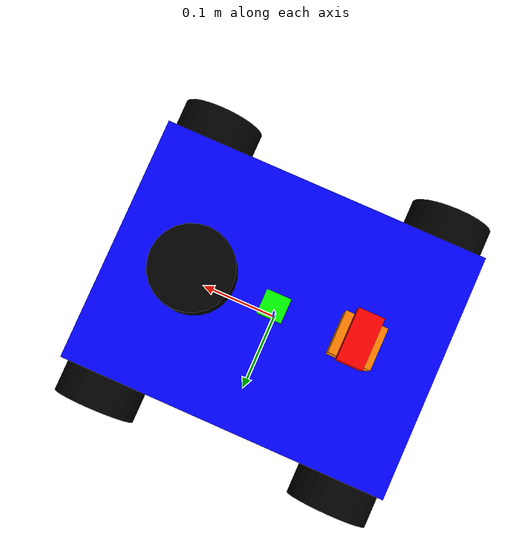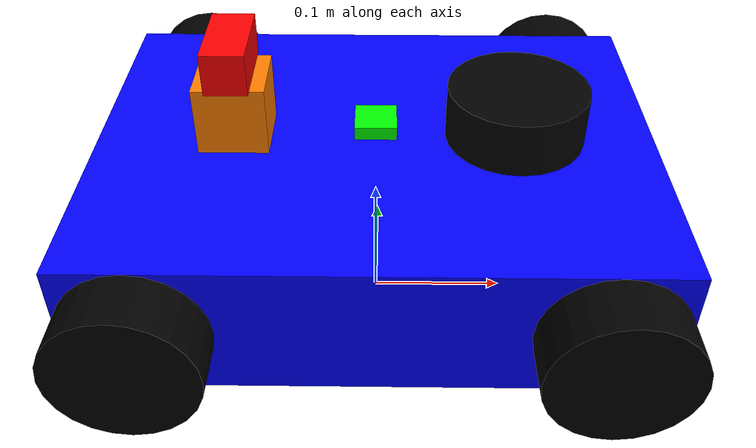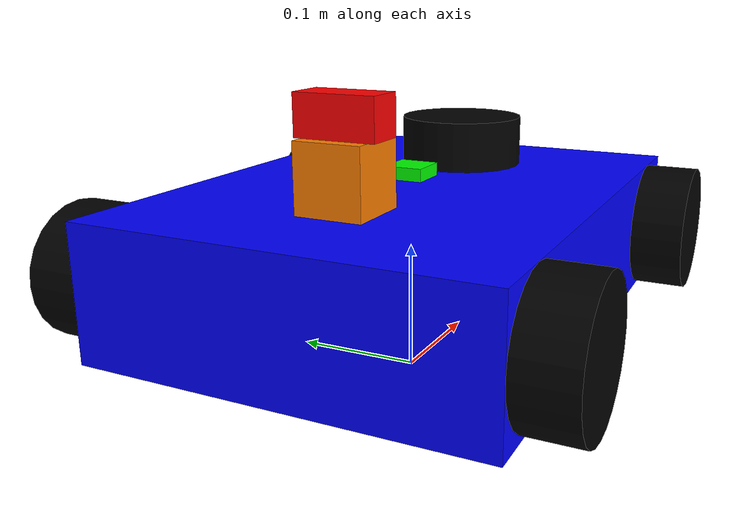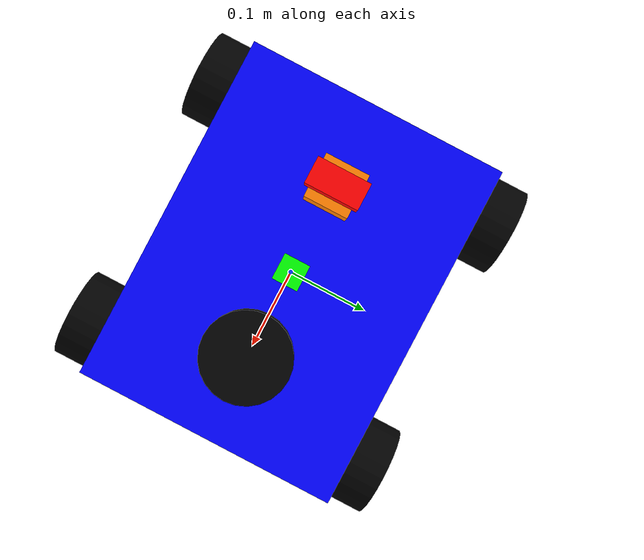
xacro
<?xml version="1.0"?>
<robot name="my_robot" xmlns:xacro="http://www.ros.org/wiki/xacro">

  <!-- PROPERTIES -->
  <xacro:property name="chassis_length" value="0.4"/>
  <xacro:property name="chassis_width"  value="0.3"/>
  <xacro:property name="chassis_height" value="0.1"/>
  <xacro:property name="wheel_radius"   value="0.05"/>
  <xacro:property name="wheel_width"    value="0.04"/>

  <!-- WHEEL MACRO -->
  <xacro:macro name="wheel" params="name x y">
    <link name="${name}">
      <visual>
        <geometry>
          <cylinder radius="${wheel_radius}" length="${wheel_width}"/>
        </geometry>
        <material name="black">
          <color rgba="0 0 0 1"/>
        </material>
      </visual>
      <collision>
        <geometry>
          <cylinder radius="${wheel_radius}" length="${wheel_width}"/>
        </geometry>
      </collision>
      <inertial>
        <mass value="0.5"/>
        <inertia ixx="0.001" ixy="0" ixz="0"
                 iyy="0.001" iyz="0" izz="0.001"/>
      </inertial>
    </link>
    <joint name="${name}_joint" type="continuous">
      <parent link="chassis"/>
      <child  link="${name}"/>
      <origin xyz="${x} ${y} 0" rpy="1.5708 0 0"/>
      <axis xyz="0 0 1"/>
    </joint>
  </xacro:macro>

  <!-- BASE LINK -->
  <link name="base_link"/>
  <joint name="base_joint" type="fixed">
    <parent link="base_link"/>
    <child  link="chassis"/>
    <origin xyz="0 0 0.1"/>
  </joint>

  <!-- CHASSIS -->
  <link name="chassis">
    <visual>
      <geometry>
        <box size="${chassis_length} ${chassis_width} ${chassis_height}"/>
      </geometry>
      <material name="blue">
        <color rgba="0 0 1 1"/>
      </material>
    </visual>
    <collision>
      <geometry>
        <box size="${chassis_length} ${chassis_width} ${chassis_height}"/>
      </geometry>
    </collision>
    <inertial>
      <mass value="2.0"/>
      <inertia ixx="0.01" ixy="0" ixz="0"
               iyy="0.01" iyz="0" izz="0.01"/>
    </inertial>
  </link>

  <!-- 4 WHEELS -->
  <xacro:wheel name="front_left_wheel"  x=" 0.15" y=" 0.17"/>
  <xacro:wheel name="front_right_wheel" x=" 0.15" y="-0.17"/>
  <xacro:wheel name="rear_left_wheel"   x="-0.15" y=" 0.17"/>
  <xacro:wheel name="rear_right_wheel"  x="-0.15" y="-0.17"/>

  <!-- LIDAR -->
  <link name="lidar_link">
    <visual>
      <geometry>
        <cylinder radius="0.05" length="0.04"/>
      </geometry>
      <material name="black">
        <color rgba="0 0 0 1"/>
      </material>
    </visual>
    <collision>
      <geometry>
        <cylinder radius="0.05" length="0.04"/>
      </geometry>
    </collision>
    <inertial>
      <mass value="0.1"/>
      <inertia ixx="0.001" ixy="0" ixz="0"
               iyy="0.001" iyz="0" izz="0.001"/>
    </inertial>
  </link>
  <joint name="lidar_joint" type="fixed">
    <parent link="chassis"/>
    <child link="lidar_link"/>
    <origin xyz="0.1 0 0.07" rpy="0 0 0"/>
  </joint>

  <!-- IMU -->
  <link name="imu_link">
    <visual>
      <geometry>
        <box size="0.03 0.03 0.01"/>
      </geometry>
      <material name="green">
        <color rgba="0 1 0 1"/>
      </material>
    </visual>
    <inertial>
      <mass value="0.01"/>
      <inertia ixx="0.0001" ixy="0" ixz="0"
               iyy="0.0001" iyz="0" izz="0.0001"/>
    </inertial>
  </link>
  <joint name="imu_joint" type="fixed">
    <parent link="chassis"/>
    <child link="imu_link"/>
    <origin xyz="0 0 0.06" rpy="0 0 0"/>
  </joint>

  <!-- ARM BASE -->
  <link name="arm_base">
    <visual>
      <geometry>
        <box size="0.05 0.05 0.1"/>
      </geometry>
      <material name="orange">
        <color rgba="1 0.5 0 1"/>
      </material>
    </visual>
    <collision>
      <geometry>
        <box size="0.05 0.05 0.1"/>
      </geometry>
    </collision>
    <inertial>
      <mass value="0.3"/>
      <inertia ixx="0.001" ixy="0" ixz="0"
               iyy="0.001" iyz="0" izz="0.001"/>
    </inertial>
  </link>
  <joint name="arm_joint" type="revolute">
    <parent link="chassis"/>
    <child link="arm_base"/>
    <origin xyz="-0.1 0 0.05" rpy="0 0 0"/>
    <axis xyz="0 1 0"/>
    <limit lower="-1.57" upper="1.57" effort="10" velocity="1"/>
  </joint>

  <!-- CAMERA -->
  <link name="camera_link">
    <visual>
      <geometry>
        <box size="0.03 0.06 0.03"/>
      </geometry>
      <material name="red">
        <color rgba="1 0 0 1"/>
      </material>
    </visual>
    <collision>
      <geometry>
        <box size="0.03 0.06 0.03"/>
      </geometry>
    </collision>
    <inertial>
      <mass value="0.05"/>
      <inertia ixx="0.0001" ixy="0" ixz="0"
               iyy="0.0001" iyz="0" izz="0.0001"/>
    </inertial>
  </link>
  <joint name="camera_joint" type="fixed">
    <parent link="arm_base"/>
    <child link="camera_link"/>
    <origin xyz="0 0 0.065" rpy="0 0 0"/>
  </joint>

  <!-- CAMERA OPTICAL FRAME -->
  <link name="camera_optical_frame"/>
  <joint name="camera_optical_joint" type="fixed">
    <parent link="camera_link"/>
    <child link="camera_optical_frame"/>
    <origin xyz="0 0 0" rpy="-1.5708 0 -1.5708"/>
  </joint>

  <!-- GAZEBO PLUGINS -->

  <!-- LiDAR Plugin -->
  <gazebo reference="lidar_link">
    <sensor name="lidar" type="gpu_lidar">
      <pose>0 0 0 0 0 0</pose>
      <update_rate>10</update_rate>
      <lidar>
        <scan>
          <horizontal>
            <samples>360</samples>
            <resolution>1</resolution>
            <min_angle>-3.14</min_angle>
            <max_angle>3.14</max_angle>
          </horizontal>
        </scan>
        <range>
          <min>0.1</min>
          <max>10.0</max>
        </range>
      </lidar>
      <always_on>1</always_on>
      <visualize>true</visualize>
      <topic>/lidar</topic>
    </sensor>
  </gazebo>

  <!-- IMU Plugin -->
  <gazebo reference="imu_link">
    <sensor name="imu" type="imu">
      <always_on>1</always_on>
      <update_rate>100</update_rate>
      <topic>/imu</topic>
      <visualize>true</visualize>
    </sensor>
  </gazebo>

  <!-- Camera Plugin -->
  <gazebo reference="camera_link">
    <sensor name="camera" type="camera">
      <always_on>1</always_on>
      <update_rate>10</update_rate>
      <visualize>true</visualize>
      <topic>camera/image</topic>
      <camera name="camera">
        <horizontal_fov>1.047</horizontal_fov>
        <image>
          <width>320</width>
          <height>240</height>
          <format>R8G8B8</format>
        </image>
        <clip>
          <near>0.1</near>
          <far>100</far>
        </clip>
        <noise>
          <type>gaussian</type>
          <mean>0</mean>
          <stddev>0.007</stddev>
        </noise>
      </camera>
    </sensor>
  </gazebo>

</robot>
